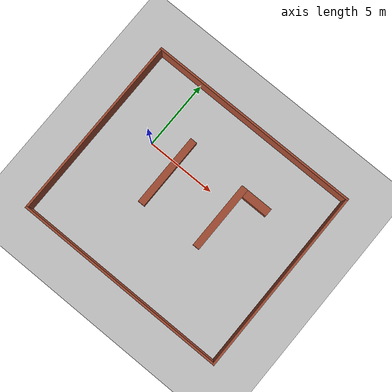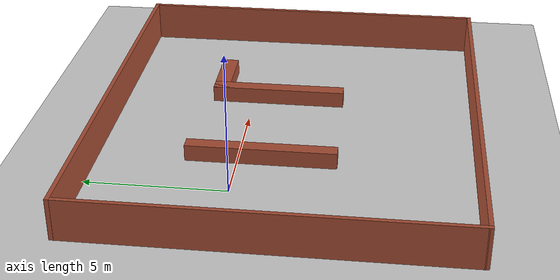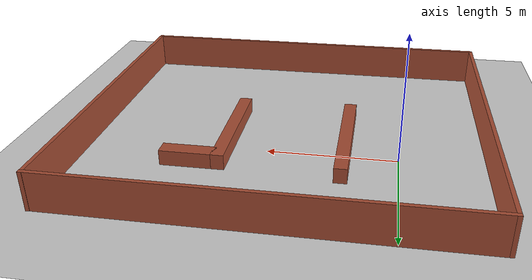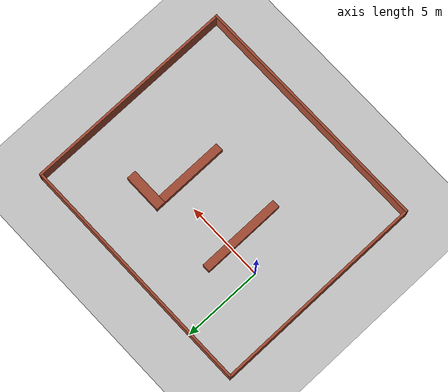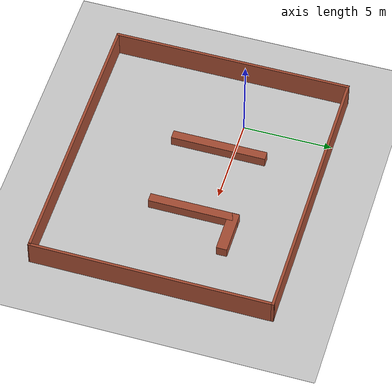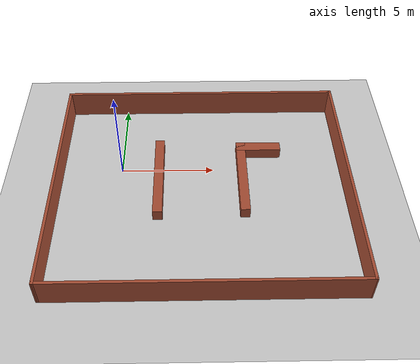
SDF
<sdf version="1.6">
 <world name="default">
  <light name="sun" type="directional">
   <pose>0 0 10 0 -0 0</pose>
   <diffuse>0.8 0.8 0.8 1</diffuse>
   <specular>0.2 0.2 0.2 1</specular>
   <attenuation>
    <range>1000</range>
    <constant>0.9</constant>
    <linear>0.01</linear>
    <quadratic>0.001</quadratic>
   </attenuation>
   <direction>-0.5 0.1 -0.9</direction>
  </light>
  <model name="ground_plane">
   <static>1</static>
   <link name="link">
    <collision name="collision">
     <geometry><plane><normal>0 0 1</normal><size>100 100</size></plane></geometry>
     <surface>
      <contact><collide_bitmask>65535</collide_bitmask></contact>
      <friction><ode><mu>100</mu><mu2>50</mu2></ode></friction>
     </surface>
    </collision>
    <visual name="visual">
     <cast_shadows>0</cast_shadows>
     <geometry><plane><normal>0 0 1</normal><size>100 100</size></plane></geometry>
     <material>
      <script><uri>file://media/materials/scripts/gazebo.material</uri><name>Gazebo/Grey</name></script>
     </material>
    </visual>
   </link>
  </model>
  <gravity>0 0 -9.8</gravity>
  <magnetic_field>6e-06 2.3e-05 -4.2e-05</magnetic_field>
  <atmosphere type="adiabatic"/>
  <physics name="default_physics" default="0" type="ode">
   <max_step_size>0.001</max_step_size>
   <real_time_factor>1</real_time_factor>
   <real_time_update_rate>1000</real_time_update_rate>
  </physics>
  <scene><ambient>0.4 0.4 0.4 1</ambient><background>0.7 0.7 0.7 1</background><shadows>1</shadows></scene>
  <audio><device>default</device></audio>
  <spherical_coordinates>
   <surface_model>EARTH_WGS84</surface_model>
   <latitude_deg>0</latitude_deg>
   <longitude_deg>0</longitude_deg>
   <elevation>0</elevation>
   <heading_deg>0</heading_deg>
  </spherical_coordinates>
  <model name="Untitled">
   <pose>4.375 -1.66002 0 0 -0 0</pose>
   <link name="Wall_11">
    <collision name="Wall_11_Collision">
     <geometry><box><size>2.45 0.6 0.6</size></box></geometry>
     <pose>0 0 0.3 0 -0 0</pose>
    </collision>
    <visual name="Wall_11_Visual">
     <pose>0 0 0.3 0 -0 0</pose>
     <geometry><box><size>2.45 0.6 0.6</size></box></geometry>
     <material>
      <script><uri>file://media/materials/scripts/gazebo.material</uri><name>Gazebo/Bricks</name></script>
      <ambient>1 1 1 1</ambient>
     </material>
     <meta><layer>0</layer></meta>
    </visual>
    <pose>3.18 2.94002 0 0 -0 3.14159</pose>
   </link>
   <link name="Wall_13">
    <collision name="Wall_13_Collision">
     <geometry><box><size>15.5 0.15 1.5</size></box></geometry>
     <pose>0 0 0.75 0 -0 0</pose>
    </collision>
    <visual name="Wall_13_Visual">
     <pose>0 0 0.75 0 -0 0</pose>
     <geometry><box><size>15.5 0.15 1.5</size></box></geometry>
     <material>
      <script><uri>file://media/materials/scripts/gazebo.material</uri><name>Gazebo/Bricks</name></script>
      <ambient>1 1 1 1</ambient>
     </material>
     <meta><layer>0</layer></meta>
    </visual>
    <pose>0 6.67002 0 0 -0 0</pose>
   </link>
   <link name="Wall_15">
    <collision name="Wall_15_Collision">
     <geometry><box><size>13.5 0.15 1.5</size></box></geometry>
     <pose>0 0 0.75 0 -0 0</pose>
    </collision>
    <visual name="Wall_15_Visual">
     <pose>0 0 0.75 0 -0 0</pose>
     <geometry><box><size>13.5 0.15 1.5</size></box></geometry>
     <material>
      <script><uri>file://media/materials/scripts/gazebo.material</uri><name>Gazebo/Bricks</name></script>
      <ambient>1 1 1 1</ambient>
     </material>
     <meta><layer>0</layer></meta>
    </visual>
    <pose>-7.675 -0.004976 0 0 -0 -1.5708</pose>
   </link>
   <link name="Wall_17">
    <collision name="Wall_17_Collision">
     <geometry><box><size>15.5 0.15 1.5</size></box></geometry>
     <pose>0 0 0.75 0 -0 0</pose>
    </collision>
    <visual name="Wall_17_Visual">
     <pose>0 0 0.75 0 -0 0</pose>
     <geometry><box><size>15.5 0.15 1.5</size></box></geometry>
     <material>
      <script><uri>file://media/materials/scripts/gazebo.material</uri><name>Gazebo/Bricks</name></script>
      <ambient>1 1 1 1</ambient>
     </material>
     <meta><layer>0</layer></meta>
    </visual>
    <pose>0 -6.67498 0 0 -0 0.000651</pose>
   </link>
   <link name="Wall_19">
    <collision name="Wall_19_Collision">
     <geometry><box><size>13.5 0.15 1.5</size></box></geometry>
     <pose>0 0 0.75 0 -0 0</pose>
    </collision>
    <visual name="Wall_19_Visual">
     <pose>0 0 0.75 0 -0 0</pose>
     <geometry><box><size>13.5 0.15 1.5</size></box></geometry>
     <material>
      <script><uri>file://media/materials/scripts/gazebo.material</uri><name>Gazebo/Bricks</name></script>
      <ambient>1 1 1 1</ambient>
     </material>
     <meta><layer>0</layer></meta>
    </visual>
    <pose>7.675 0.005024 0 0 -0 1.5708</pose>
   </link>
   <link name="Wall_6">
    <collision name="Wall_6_Collision">
     <geometry><box><size>5.35 0.5 0.6</size></box></geometry>
     <pose>0 0 0.3 0 -0 0</pose>
    </collision>
    <visual name="Wall_6_Visual">
     <pose>0 0 0.3 0 -0 0</pose>
     <geometry><box><size>5.35 0.5 0.6</size></box></geometry>
     <material>
      <script><uri>file://media/materials/scripts/gazebo.material</uri><name>Gazebo/Bricks</name></script>
      <ambient>1 1 1 1</ambient>
     </material>
     <meta><layer>0</layer></meta>
    </visual>
    <pose>-2.335 0.825024 0 0 -0 1.5708</pose>
   </link>
   <link name="Wall_9">
    <collision name="Wall_9_Collision">
     <geometry><box><size>5 0.5 0.6</size></box></geometry>
     <pose>0 0 0.3 0 -0 0</pose>
    </collision>
    <visual name="Wall_9_Visual">
     <pose>0 0 0.3 0 -0 0</pose>
     <geometry><box><size>5 0.5 0.6</size></box></geometry>
     <material>
      <script><uri>file://media/materials/scripts/gazebo.material</uri><name>Gazebo/Bricks</name></script>
      <ambient>1 1 1 1</ambient>
     </material>
     <meta><layer>0</layer></meta>
    </visual>
    <pose>2.195 0.740024 0 0 -0 -1.5708</pose>
   </link>
   <static>1</static>
  </model>
 </world>
</sdf>
